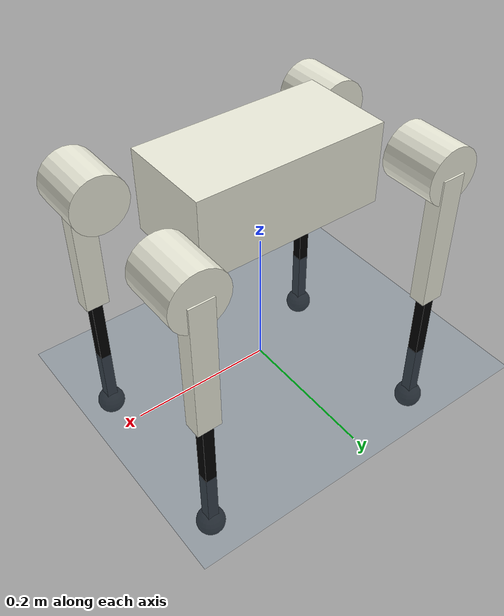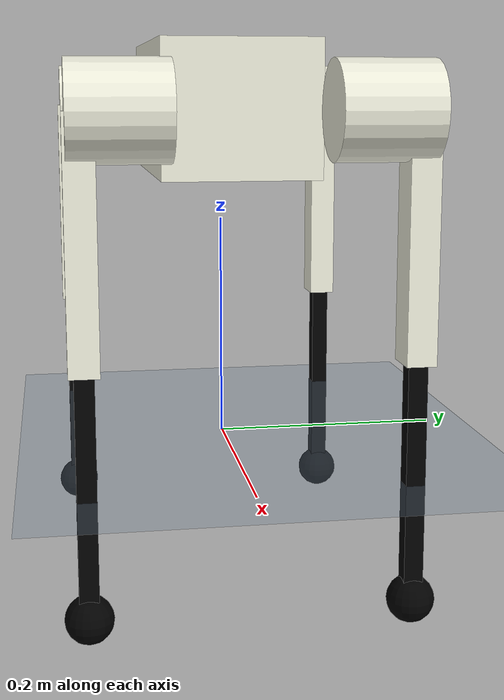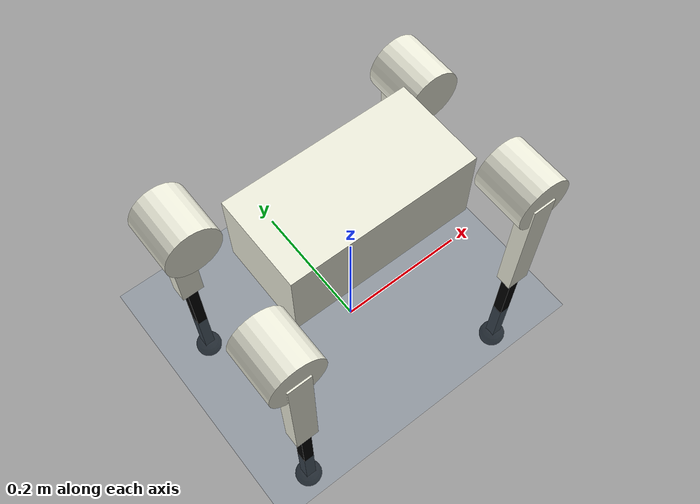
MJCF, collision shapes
<mujoco model="basic scene">

  <include file="a1.xml"/>

	 <option timestep="0.001" integrator="RK4" gravity="0 0 -9.81">
		<flag sensornoise="disable" contact="enable" energy="enable"/>
	</option>

  <statistic center="0 0 0.1" extent="0.8"/>

  <asset>
    <texture type="skybox" builtin="gradient" rgb1="0.3 0.5 0.7" rgb2="0 0 0" width="512"
        height="3072"/>
    <texture type="2d" name="groundplane" builtin="checker" mark="edge" rgb1="0.2 0.3 0.4"
        rgb2="0.1 0.2 0.3" markrgb="0.8 0.8 0.8" width="300" height="300"/>
    <material name="groundplane" texture="groundplane" texuniform="true" texrepeat="5 5"
        reflectance="0.2"/>
  </asset>
  <worldbody>
    <light pos="0 0 1.5" dir="0 0 -1" directional="true"/>
    <geom name="floor2" size="0 0 0.5" type="plane" material="groundplane" friction=" 1 1 1"/>
  </worldbody>

</mujoco>

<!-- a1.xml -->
<mujoco model="a1_description">
    <compiler angle="radian" meshdir="../meshes/" />
    <size njmax="500" nconmax="100" />
    <option gravity='0 0 -9.806' iterations='50' solver='Newton'/>

    <default>
        <geom contype="1" conaffinity="1" friction="0.6 0.3 0.3" rgba="0.5 0.6 0.7 1" margin="0.001" group="0"/>

        <light castshadow="false" diffuse="1 1 1"/>
        <motor ctrlrange="-33.5 33.5" ctrllimited="true"/>
        <camera fovy="60"/>
        <joint damping="0.01" armature="0.01" frictionloss="0.2" />

    </default>

    <asset>
        <mesh name="trunk" file="trunk.stl" />
        <mesh name="hip" file="hip.stl" />
        <mesh name="thigh_mirror" file="thigh_mirror.stl" />
        <mesh name="calf" file="calf.stl" />
        <mesh name="thigh" file="thigh.stl" />
    </asset>

    <asset>
        <texture type="skybox" builtin="gradient" rgb1="1.0 1.0 1.0" rgb2="1.0 1.0 1.0" width="512" height="512"/>
        <texture name="plane" type="2d" builtin="flat" rgb1="1 1 1" rgb2="1 1 1" width="512" height="512" mark="cross" markrgb="0 0 0"/>
        <material name="plane" reflectance="0.0" texture="plane" texrepeat="3 3" texuniform="true"/>
    </asset>

    <visual>
        <rgba com="0.502 1.0 0 0.5" contactforce="0.98 0.4 0.4 0.7" contactpoint="1.0 1.0 0.6 0.4"/>
        <scale com="0.2" forcewidth="0.035" contactwidth="0.10" contactheight="0.04"/>
    </visual>

    <worldbody>
        <light directional="true" diffuse=".8 .8 .8" pos="0 0 10" dir="0 0 -10"/>
        <camera name="track" mode="trackcom" pos="0 -1.3 1.6" xyaxes="1 0 0 0 0.707 0.707"/>

        <body name="trunk" pos="0 0 0.3">
            <inertial pos="0.0127283 0.00218554 0.000514891" quat="0.00186575 0.711506 0.000389649 0.702677" mass="4.714" diaginertia="0.0648213 0.0565803 0.0169323" />
            <joint type="free" />
            <geom type="mesh" contype="0" conaffinity="0" group="1" rgba="0.913725 0.913725 0.847059 1" mesh="trunk" />
            <geom size="0.1335 0.066 0.057" type="box" rgba="0.913725 0.913725 0.847059 0" />
            <geom size="0.0005 0.0005 0.0005" type="box" contype="0" conaffinity="0" group="1" rgba="0.8 0 0 0" />
            <geom size="0.0005 0.0005 0.0005" type="box" rgba="0.8 0 0 0" />
            <site name="imu" pos="0 0 0"/>

            <body name="FR_hip" pos="0.183 -0.047 0">
                <inertial pos="-0.003311 -0.000635 3.1e-05" quat="0.507528 0.506268 0.491507 0.494499" mass="0.696" diaginertia="0.000807752 0.00055293 0.000468983" />
                <joint name="FR_hip_joint" pos="0 0 0" axis="1 0 0" limited="true" range="-0.802851 0.802851" />
                <geom quat="0 1 0 0" type="mesh" contype="0" conaffinity="0" group="1" rgba="0.913725 0.913725 0.847059 1" mesh="hip" />
                <geom size="0.04 0.04" pos="0 -0.055 0" quat="0.707107 0.707107 0 0" type="cylinder" rgba="0.913725 0.913725 0.847059 0" />
                <body name="FR_thigh" pos="0 -0.08505 0">
                    <inertial pos="-0.003237 0.022327 -0.027326" quat="0.999125 -0.00256393 -0.0409531 -0.00806091" mass="1.013" diaginertia="0.00555739 0.00513936 0.00133944" />
                    <joint name="FR_thigh_joint" pos="0 0 0" axis="0 1 0" limited="true" range="-1.0472 4.18879" />
                    <geom type="mesh" contype="0" conaffinity="0" group="1" rgba="0.913725 0.913725 0.847059 1" mesh="thigh_mirror" />
                    <geom size="0.1 0.01225 0.017" pos="0 0 -0.1" quat="0.707107 0 0.707107 0" type="box" rgba="0.913725 0.913725 0.847059 0" />
                    <body name="FR_calf" pos="0 0 -0.2">
                        <inertial pos="0.00472659 0 -0.131975" quat="0.706886 0.017653 0.017653 0.706886" mass="0.226" diaginertia="0.00340344 0.00339393 3.54834e-05" />
                        <joint name="FR_calf_joint" pos="0 0 0" axis="0 1 0" limited="true" range="-2.69653 -0.916298" />
                        <geom type="mesh" contype="0" conaffinity="0" group="1" rgba="0 0 0 1" mesh="calf" />
                        <geom size="0.1 0.008 0.008" pos="0 0 -0.1" quat="0.707107 0 0.707107 0" type="box" rgba="0 0 0 0" />
                        <geom size="0.01" pos="0 0 -0.2" contype="0" conaffinity="0" group="1" rgba="0 0 0 1" />
                        <geom size="0.02" pos="0 0 -0.2" rgba="0 0 0 1" />
                        <site name="FR_tip" pos="0 0 -0.2"/> <!-- Add site to attach IMU and/or get tip pos/quat-->

                    </body>
                </body>
            </body>
            <body name="FL_hip" pos="0.183 0.047 0">
                <inertial pos="-0.003311 0.000635 3.1e-05" quat="0.494499 0.491507 0.506268 0.507528" mass="0.696" diaginertia="0.000807752 0.00055293 0.000468983" />
                <joint name="FL_hip_joint" pos="0 0 0" axis="1 0 0" limited="true" range="-0.802851 0.802851" />
                <geom type="mesh" contype="0" conaffinity="0" group="1" rgba="0.913725 0.913725 0.847059 1" mesh="hip" />
                <geom size="0.04 0.04" pos="0 0.055 0" quat="0.707107 0.707107 0 0" type="cylinder" rgba="0.913725 0.913725 0.847059 0" />
                <body name="FL_thigh" pos="0 0.08505 0">
                    <inertial pos="-0.003237 -0.022327 -0.027326" quat="0.999125 0.00256393 -0.0409531 0.00806091" mass="1.013" diaginertia="0.00555739 0.00513936 0.00133944" />
                    <joint name="FL_thigh_joint" pos="0 0 0" axis="0 1 0" limited="true" range="-1.0472 4.18879" />
                    <geom type="mesh" contype="0" conaffinity="0" group="1" rgba="0.913725 0.913725 0.847059 1" mesh="thigh" />
                    <geom size="0.1 0.01225 0.017" pos="0 0 -0.1" quat="0.707107 0 0.707107 0" type="box" rgba="0.913725 0.913725 0.847059 0" />
                    <body name="FL_calf" pos="0 0 -0.2">
                        <inertial pos="0.00472659 0 -0.131975" quat="0.706886 0.017653 0.017653 0.706886" mass="0.226" diaginertia="0.00340344 0.00339393 3.54834e-05" />
                        <joint name="FL_calf_joint" pos="0 0 0" axis="0 1 0" limited="true" range="-2.69653 -0.916298" />
                        <geom type="mesh" contype="0" conaffinity="0" group="1" rgba="0 0 0 1" mesh="calf" />
                        <geom size="0.1 0.008 0.008" pos="0 0 -0.1" quat="0.707107 0 0.707107 0" type="box" rgba="0 0 0 0" />
                        <geom size="0.01" pos="0 0 -0.2" contype="0" conaffinity="0" group="1" rgba="0 0 0 1" />
                        <geom size="0.02" pos="0 0 -0.2" rgba="0 0 0 1" />
                        <site name="FL_tip" pos="0 0 -0.2"/> <!-- Add site to attach IMU and/or get tip pos/quat-->
                    </body>
                </body>
            </body>
            <body name="RR_hip" pos="-0.183 -0.047 0">
                <inertial pos="0.003311 -0.000635 3.1e-05" quat="0.491507 0.494499 0.507528 0.506268" mass="0.696" diaginertia="0.000807752 0.00055293 0.000468983" />
                <joint name="RR_hip_joint" pos="0 0 0" axis="1 0 0" limited="true" range="-0.802851 0.802851" />
                <geom quat="0 0 0 -1" type="mesh" contype="0" conaffinity="0" group="1" rgba="0.913725 0.913725 0.847059 1" mesh="hip" />
                <geom size="0.04 0.04" pos="0 -0.055 0" quat="0.707107 0.707107 0 0" type="cylinder" rgba="0.913725 0.913725 0.847059 0" />
                <body name="RR_thigh" pos="0 -0.08505 0">
                    <inertial pos="-0.003237 0.022327 -0.027326" quat="0.999125 -0.00256393 -0.0409531 -0.00806091" mass="1.013" diaginertia="0.00555739 0.00513936 0.00133944" />
                    <joint name="RR_thigh_joint" pos="0 0 0" axis="0 1 0" limited="true" range="-1.0472 4.18879" />
                    <geom type="mesh" contype="0" conaffinity="0" group="1" rgba="0.913725 0.913725 0.847059 1" mesh="thigh_mirror" />
                    <geom size="0.1 0.01225 0.017" pos="0 0 -0.1" quat="0.707107 0 0.707107 0" type="box" rgba="0.913725 0.913725 0.847059 0" />
                    <body name="RR_calf" pos="0 0 -0.2">
                        <inertial pos="0.00472659 0 -0.131975" quat="0.706886 0.017653 0.017653 0.706886" mass="0.226" diaginertia="0.00340344 0.00339393 3.54834e-05" />
                        <joint name="RR_calf_joint" pos="0 0 0" axis="0 1 0" limited="true" range="-2.69653 -0.916298" />
                        <geom type="mesh" contype="0" conaffinity="0" group="1" rgba="0 0 0 1" mesh="calf" />
                        <geom size="0.1 0.008 0.008" pos="0 0 -0.1" quat="0.707107 0 0.707107 0" type="box" rgba="0 0 0 0" />
                        <geom size="0.01" pos="0 0 -0.2" contype="0" conaffinity="0" group="1" rgba="0 0 0 1" />
                        <geom size="0.02" pos="0 0 -0.2" rgba="0 0 0 1" />
                        <site name="RR_tip" pos="0 0 -0.2"/> <!-- Add site to attach IMU and/or get tip pos/quat-->
                    </body>
                </body>
            </body>
            <body name="RL_hip" pos="-0.183 0.047 0">
                <inertial pos="0.003311 0.000635 3.1e-05" quat="0.506268 0.507528 0.494499 0.491507" mass="0.696" diaginertia="0.000807752 0.00055293 0.000468983" />
                <joint name="RL_hip_joint" pos="0 0 0" axis="1 0 0" limited="true" range="-0.802851 0.802851" />
                <geom quat="0 0 1 0" type="mesh" contype="0" conaffinity="0" group="1" rgba="0.913725 0.913725 0.847059 1" mesh="hip" />
                <geom size="0.04 0.04" pos="0 0.055 0" quat="0.707107 0.707107 0 0" type="cylinder" rgba="0.913725 0.913725 0.847059 0" />
                <body name="RL_thigh" pos="0 0.08505 0">
                    <inertial pos="-0.003237 -0.022327 -0.027326" quat="0.999125 0.00256393 -0.0409531 0.00806091" mass="1.013" diaginertia="0.00555739 0.00513936 0.00133944" />
                    <joint name="RL_thigh_joint" pos="0 0 0" axis="0 1 0" limited="true" range="-1.0472 4.18879" />
                    <geom type="mesh" contype="0" conaffinity="0" group="1" rgba="0.913725 0.913725 0.847059 1" mesh="thigh" />
                    <geom size="0.1 0.01225 0.017" pos="0 0 -0.1" quat="0.707107 0 0.707107 0" type="box" rgba="0.913725 0.913725 0.847059 0" />
                    <body name="RL_calf" pos="0 0 -0.2">
                        <inertial pos="0.00472659 0 -0.131975" quat="0.706886 0.017653 0.017653 0.706886" mass="0.226" diaginertia="0.00340344 0.00339393 3.54834e-05" />
                        <joint name="RL_calf_joint" pos="0 0 0" axis="0 1 0" limited="true" range="-2.69653 -0.916298" />
                        <geom type="mesh" contype="0" conaffinity="0" group="1" rgba="0 0 0 1" mesh="calf" />
                        <geom size="0.1 0.008 0.008" pos="0 0 -0.1" quat="0.707107 0 0.707107 0" type="box" rgba="0 0 0 0" />
                        <geom size="0.01" pos="0 0 -0.2" contype="0" conaffinity="0" group="1" rgba="0 0 0 1" />
                        <geom size="0.02" pos="0 0 -0.2" rgba="0 0 0 1" />
                        <site name="RL_tip" pos="0 0 -0.2"/> <!-- Add site to attach IMU and/or get tip pos/quat-->
                    </body>
                </body>
            </body>
        </body>
    </worldbody>
    <actuator>

        <motor name="FR_hip"       gear="1" joint="FR_hip_joint"/>
        <motor name="FR_thigh"       gear="1" joint="FR_thigh_joint"/>
        <motor name="FR_calf"       gear="1" joint="FR_calf_joint"/>
        <motor name="FL_hip"     gear="1" joint="FL_hip_joint"/>
        <motor name="FL_thigh"     gear="1" joint="FL_thigh_joint"/>
        <motor name="FL_calf"     gear="1" joint="FL_calf_joint"/>
        <motor name="RR_hip"      gear="1" joint="RR_hip_joint"/>
        <motor name="RR_thigh"   gear="1" joint="RR_thigh_joint"/>
        <motor name="RR_calf"   gear="1" joint="RR_calf_joint" />
        <motor name="RL_hip"      gear="1" joint="RL_hip_joint"/>
        <motor name="RL_thigh"      gear="1" joint="RL_thigh_joint"/>
        <motor name="RL_calf"      gear="1" joint="RL_calf_joint"/>
    </actuator>

    <sensor>

        <jointpos name="FR_hip_pos"     joint="FR_hip_joint"/>
        <jointpos name="FR_thigh_pos"   joint="FR_thigh_joint"/>
        <jointpos name="FR_calf_pos"    joint="FR_calf_joint"/>
        <jointpos name="FL_hip_pos"     joint="FL_hip_joint"/>
        <jointpos name="FL_thigh_pos"   joint="FL_thigh_joint"/>
        <jointpos name="FL_calf_pos"    joint="FL_calf_joint"/>
        <jointpos name="RR_hip_pos"     joint="RR_hip_joint"/>
        <jointpos name="RR_thigh_pos"   joint="RR_thigh_joint"/>
        <jointpos name="RR_calf_pos"    joint="RR_calf_joint" />
        <jointpos name="RL_hip_pos"     joint="RL_hip_joint"/>
        <jointpos name="RL_thigh_pos"   joint="RL_thigh_joint"/>
        <jointpos name="RL_calf_pos"    joint="RL_calf_joint"/>

        <jointvel name="FR_hip_vel"     joint="FR_hip_joint"/>
        <jointvel name="FR_thigh_vel"   joint="FR_thigh_joint"/>
        <jointvel name="FR_calf_vel"    joint="FR_calf_joint"/>
        <jointvel name="FL_hip_vel"     joint="FL_hip_joint"/>
        <jointvel name="FL_thigh_vel"   joint="FL_thigh_joint"/>
        <jointvel name="FL_calf_vel"    joint="FL_calf_joint"/>
        <jointvel name="RR_hip_vel"     joint="RR_hip_joint"/>
        <jointvel name="RR_thigh_vel"   joint="RR_thigh_joint"/>
        <jointvel name="RR_calf_vel"    joint="RR_calf_joint" />
        <jointvel name="RL_hip_vel"     joint="RL_hip_joint"/>
        <jointvel name="RL_thigh_vel"   joint="RL_thigh_joint"/>
        <jointvel name="RL_calf_vel"    joint="RL_calf_joint"/>

        <!-- Body IMU/PosQuat  -->
        <accelerometer name="Body_Acc" site="imu"/>
        <gyro name="Body_Gyro" site="imu"/>

        <framepos name="Body_Pos" objtype="site" objname="imu"/>
        <framequat name="Body_Quat" objtype="site" objname="imu"/>

        <!-- Extra sensors for tips Pos/Quat -->
        <framepos name="FR_Pos" objtype="site" objname="FR_tip"/>
        <framequat name="FR_Quat" objtype="site" objname="FR_tip"/>

        <framepos name="FL_Pos" objtype="site" objname="FL_tip"/>
        <framequat name="FL_Quat" objtype="site" objname="FL_tip"/>

        <framepos name="RR_Pos" objtype="site" objname="RR_tip"/>
        <framequat name="RR_Quat" objtype="site" objname="RR_tip"/>

        <framepos name="RL_Pos" objtype="site" objname="RL_tip"/>
        <framequat name="RL_Quat" objtype="site" objname="RL_tip"/>

        <!-- Extra IMU sensor on foot tips -->
        <accelerometer name="FR_Acc" site="FR_tip"/>
        <gyro name="FR_Gyro" site="FR_tip"/>

        <accelerometer name="FL_Acc" site="FL_tip"/>
        <gyro name="FL_Gyro" site="FL_tip"/>

        <accelerometer name="RR_Acc" site="RR_tip"/>
        <gyro name="RR_Gyro" site="RR_tip"/>

        <accelerometer name="RL_Acc" site="RL_tip"/>
        <gyro name="RL_Gyro" site="RL_tip"/>

        <!-- Force sensors -->
        <force name="FR_foot_force" site="FR_tip"/>
        <force name="FL_foot_force" site="FL_tip"/>
        <force name="RR_foot_force" site="RR_tip"/>
        <force name="RL_foot_force" site="RL_tip"/>
    </sensor>

</mujoco>
